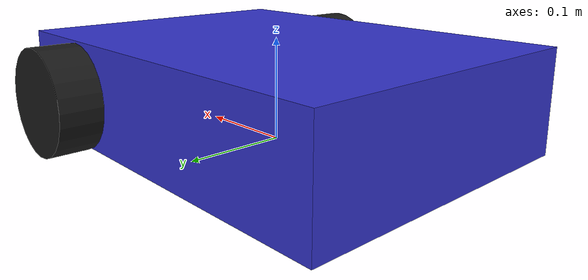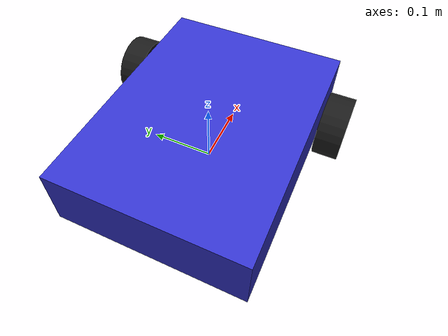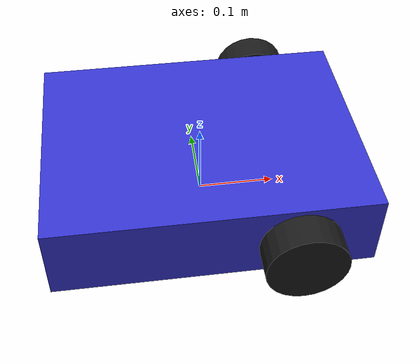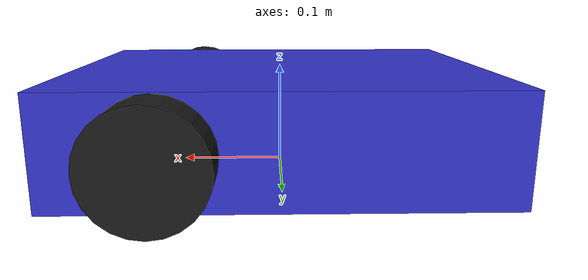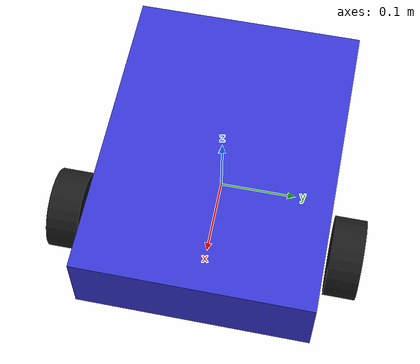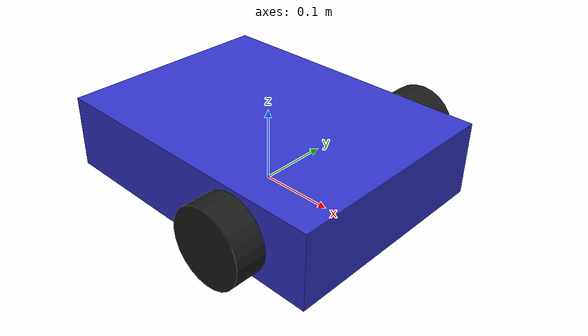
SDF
<?xml version="1.0"?>
<sdf version="1.6">
  <model name="diff_drive_robot">
    <!-- 로봇 본체 -->
    <link name="chassis">
      <pose>0 0 0.05 0 0 0</pose>
      <inertial>
        <mass>5.0</mass>
        <inertia>
          <ixx>0.0417</ixx>
          <iyy>0.0417</iyy>
          <izz>0.0833</izz>
          <ixy>0</ixy>
          <ixz>0</ixz>
          <iyz>0</iyz>
        </inertia>
      </inertial>
      <collision name="collision">
        <geometry>
          <box>
            <size>0.4 0.3 0.1</size>
          </box>
        </geometry>
      </collision>
      <visual name="visual">
        <geometry>
          <box>
            <size>0.4 0.3 0.1</size>
          </box>
        </geometry>
        <material>
          <ambient>0.2 0.2 0.8 1</ambient>
          <diffuse>0.2 0.2 0.8 1</diffuse>
          <specular>0.1 0.1 0.1 1</specular>
        </material>
      </visual>
    </link>

    <!-- 좌측 바퀴 -->
    <link name="left_wheel">
      <pose>0.1 0.175 0.05 -1.5707 0 0</pose>
      <inertial>
        <mass>1.0</mass>
        <inertia>
          <ixx>0.0029</ixx>
          <iyy>0.0029</iyy>
          <izz>0.0052</izz>
          <ixy>0</ixy>
          <ixz>0</ixz>
          <iyz>0</iyz>
        </inertia>
      </inertial>
      <collision name="collision">
        <geometry>
          <cylinder>
            <radius>0.05</radius>
            <length>0.04</length>
          </cylinder>
        </geometry>
      </collision>
      <visual name="visual">
        <geometry>
          <cylinder>
            <radius>0.05</radius>
            <length>0.04</length>
          </cylinder>
        </geometry>
        <material>
          <ambient>0.1 0.1 0.1 1</ambient>
          <diffuse>0.1 0.1 0.1 1</diffuse>
          <specular>0.1 0.1 0.1 1</specular>
        </material>
      </visual>
    </link>

    <!-- 우측 바퀴 -->
    <link name="right_wheel">
      <pose>0.1 -0.175 0.05 -1.5707 0 0</pose>
      <inertial>
        <mass>1.0</mass>
        <inertia>
          <ixx>0.0029</ixx>
          <iyy>0.0029</iyy>
          <izz>0.0052</izz>
          <ixy>0</ixy>
          <ixz>0</ixz>
          <iyz>0</iyz>
        </inertia>
      </inertial>
      <collision name="collision">
        <geometry>
          <cylinder>
            <radius>0.05</radius>
            <length>0.04</length>
          </cylinder>
        </geometry>
      </collision>
      <visual name="visual">
        <geometry>
          <cylinder>
            <radius>0.05</radius>
            <length>0.04</length>
          </cylinder>
        </geometry>
        <material>
          <ambient>0.1 0.1 0.1 1</ambient>
          <diffuse>0.1 0.1 0.1 1</diffuse>
          <specular>0.1 0.1 0.1 1</specular>
        </material>
      </visual>
    </link>

    <!-- 캐스터 휠 -->
    <link name="caster">
      <pose>-0.15 0 0.025 0 0 0</pose>
      <inertial>
        <mass>0.5</mass>
        <inertia>
          <ixx>0.0001</ixx>
          <iyy>0.0001</iyy>
          <izz>0.0001</izz>
          <ixy>0</ixy>
          <ixz>0</ixz>
          <iyz>0</iyz>
        </inertia>
      </inertial>
      <collision name="collision">
        <geometry>
          <sphere>
            <radius>0.025</radius>
          </sphere>
        </geometry>
        <surface>
          <friction>
            <ode>
              <mu>0.1</mu>
              <mu2>0.1</mu2>
            </ode>
          </friction>
        </surface>
      </collision>
      <visual name="visual">
        <geometry>
          <sphere>
            <radius>0.025</radius>
          </sphere>
        </geometry>
        <material>
          <ambient>0.3 0.3 0.3 1</ambient>
          <diffuse>0.3 0.3 0.3 1</diffuse>
          <specular>0.1 0.1 0.1 1</specular>
        </material>
      </visual>
    </link>

    <!-- 좌측 바퀴 조인트 -->
    <joint name="left_wheel_joint" type="revolute">
      <parent>chassis</parent>
      <child>left_wheel</child>
      <axis>
        <xyz>0 0 1</xyz>
        <limit>
          <lower>-1e+16</lower>
          <upper>1e+16</upper>
        </limit>
      </axis>
    </joint>

    <!-- 우측 바퀴 조인트 -->
    <joint name="right_wheel_joint" type="revolute">
      <parent>chassis</parent>
      <child>right_wheel</child>
      <axis>
        <xyz>0 0 1</xyz>
        <limit>
          <lower>-1e+16</lower>
          <upper>1e+16</upper>
        </limit>
      </axis>
    </joint>

    <!-- 캐스터 볼 조인트 -->
    <joint name="caster_joint" type="ball">
      <parent>chassis</parent>
      <child>caster</child>
    </joint>

    <!-- IMU 센서 링크 추가 -->
    <link name="imu_link">
      <pose>0 0 0.05 0 0 0</pose>
      <inertial>
        <mass>0.1</mass>
        <inertia>
          <ixx>0.000001</ixx>
          <iyy>0.000001</iyy>
          <izz>0.000001</izz>
          <ixy>0</ixy>
          <ixz>0</ixz>
          <iyz>0</iyz>
        </inertia>
      </inertial>
      <collision name="collision">
        <geometry>
          <box>
            <size>0.05 0.05 0.02</size>
          </box>
        </geometry>
      </collision>
      <visual name="visual">
        <geometry>
          <box>
            <size>0.05 0.05 0.02</size>
          </box>
        </geometry>
        <material>
          <ambient>0.8 0.2 0.2 1</ambient>
          <diffuse>0.8 0.2 0.2 1</diffuse>
          <specular>0.1 0.1 0.1 1</specular>
        </material>
      </visual>
      <sensor name="imu_sensor" type="imu">
        <always_on>1</always_on>
        <update_rate>100</update_rate>
        <visualize>true</visualize>
        <topic>imu</topic>
        <plugin filename="libignition-gazebo-imu-system.so"
                name="ignition::gazebo::systems::Imu">
        </plugin>
      </sensor>
    </link>

    <!-- IMU 고정 조인트 -->
    <joint name="imu_joint" type="fixed">
      <parent>chassis</parent>
      <child>imu_link</child>
    </joint>

    <!-- 차동 구동 플러그인 -->
    <plugin
      filename="libignition-gazebo-diff-drive-system.so"
      name="ignition::gazebo::systems::DiffDrive">
      <left_joint>left_wheel_joint</left_joint>
      <right_joint>right_wheel_joint</right_joint>
      <wheel_separation>0.35</wheel_separation>
      <wheel_radius>0.05</wheel_radius>
      <odom_publish_frequency>10</odom_publish_frequency>
      <topic>cmd_vel</topic>
    </plugin>
  </model>
</sdf>
